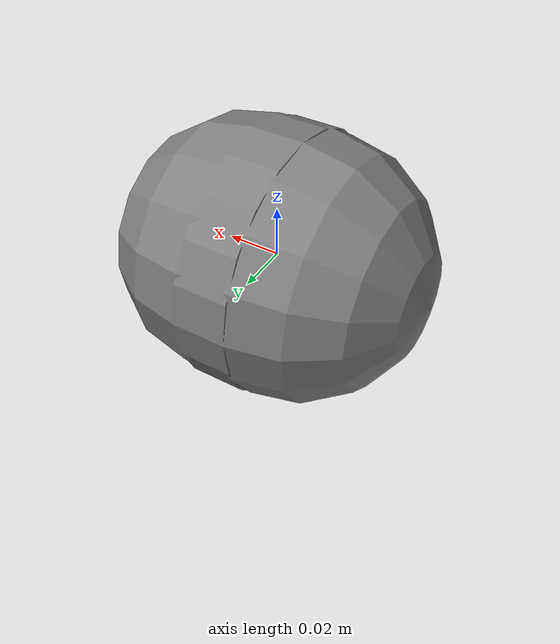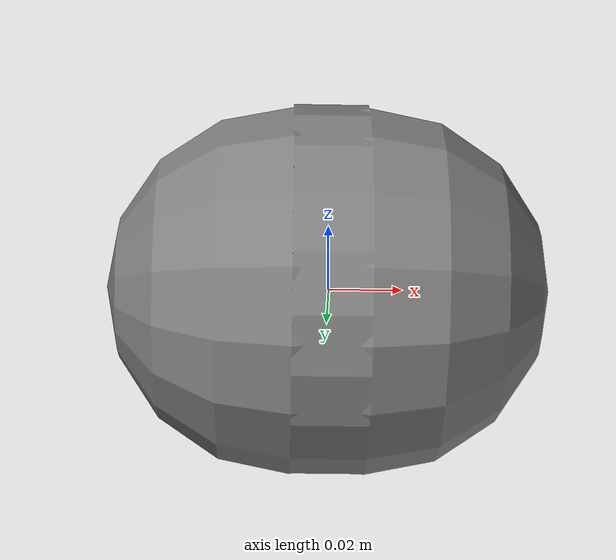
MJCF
<mujoco model="linearparticle">

    <compiler inertiafromgeom="true" angle="radian" coordinate="local" />
    <option timestep="0.01" gravity="0 0 0" iterations="20" integrator="Euler" />
    <default>
        <joint limited="false" damping="1" />
        <geom contype="2" conaffinity="1" condim="1" friction=".5 .1 .1" density="1000" margin="0.002" />
    </default>

    <worldbody>
        <body name="particle" pos="0 0 0">
            <geom name="particle_geom" type="capsule" fromto="-0.01 0 0 0.01 0 0" size="0.05" />
            <site name="particle_site" pos="0 0 0" size="0.01" />
            <joint name="ball_x" type="slide" pos="0 0 0" axis="1 0 0" />
            <joint name="ball_y" type="slide" pos="0 0 0" axis="0 1 0" />
        </body>

        <site name="target_site" pos="0 0 0" size="0.01" />
    </worldbody>

    <actuator>
        <motor joint="ball_x" />
        <motor joint="ball_y" />
    </actuator>
</mujoco>
